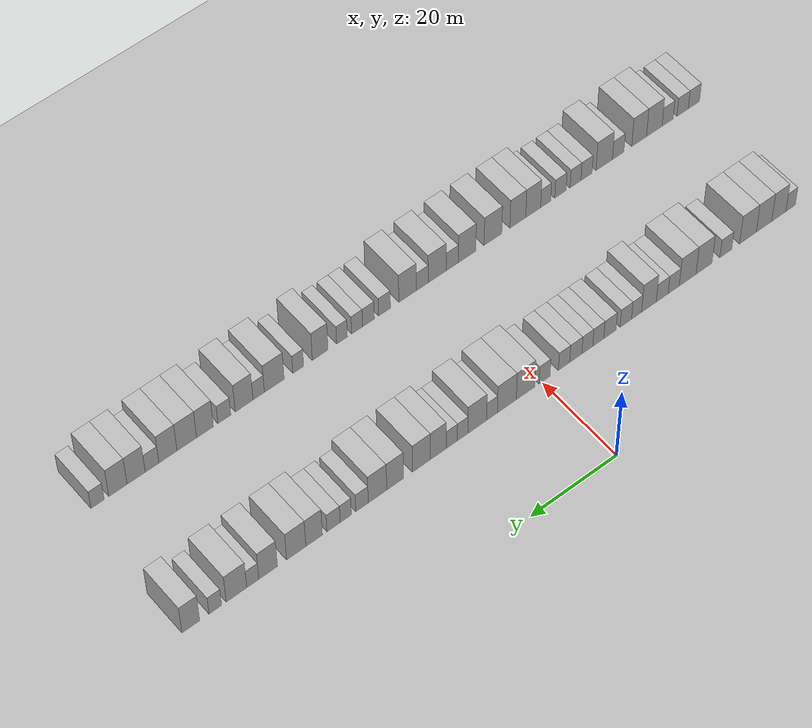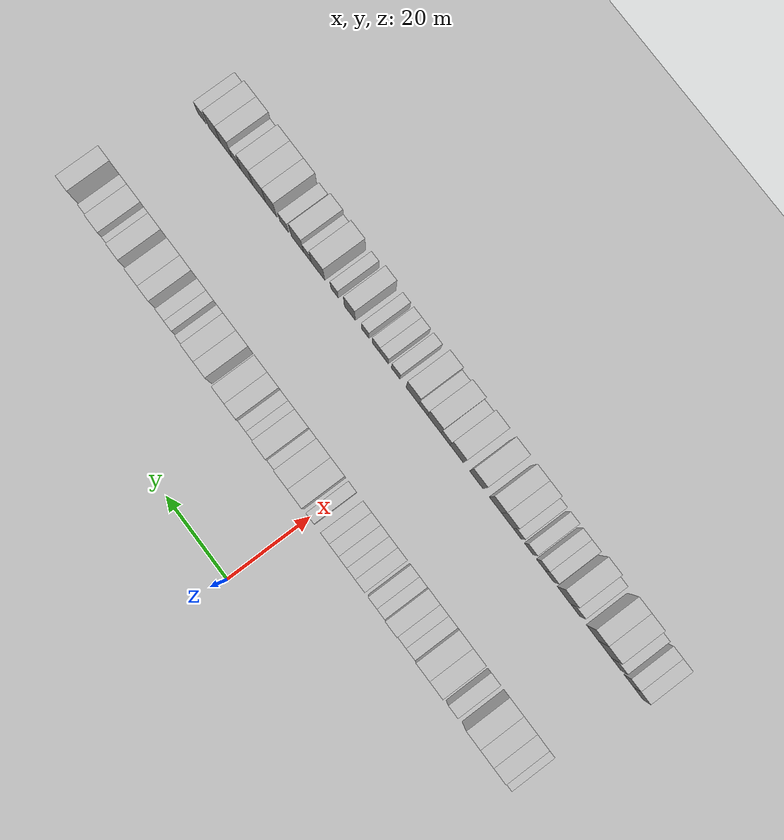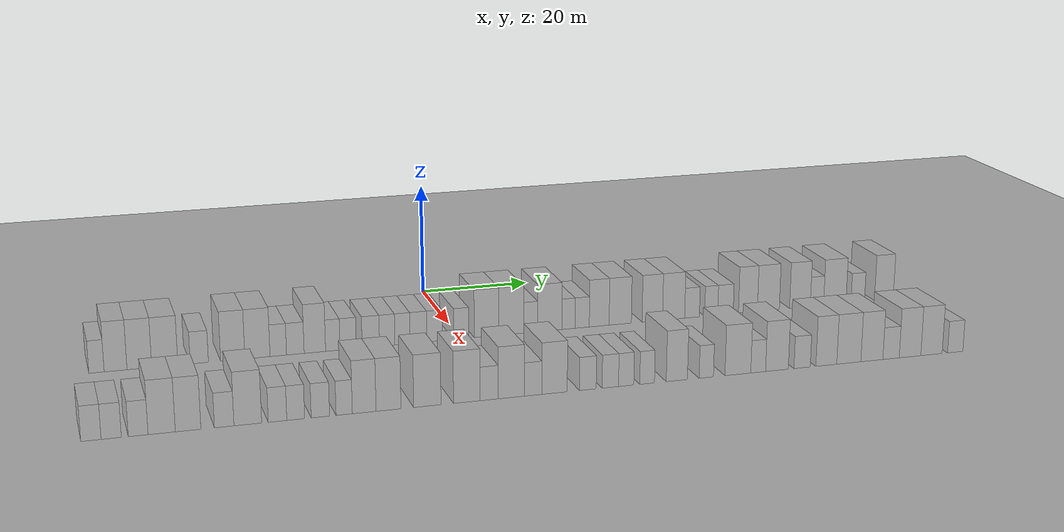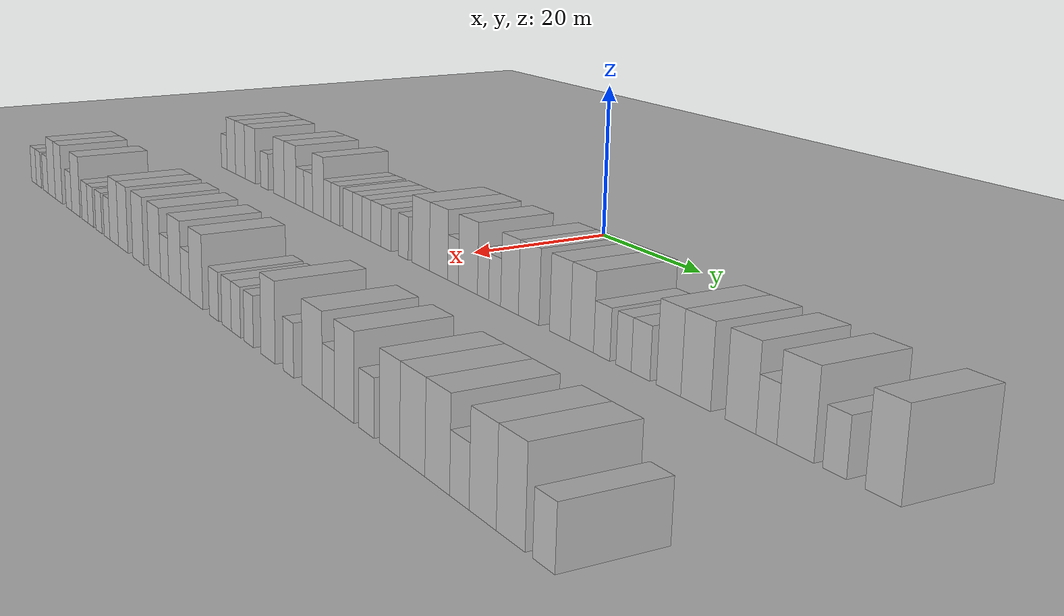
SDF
<sdf version="1.6">
 <world name="default">
  <include><name>ground_plane_1</name><uri>model://HANNAS_ground_plane</uri></include>
  <include>
   <name>ground_plane_2</name>
   <uri>model://HANNAS_ground_plane</uri>
   <pose>100 0 0  0 0 0</pose>
  </include>
  <model name="building_42">
   <static>1</static>
   <pose>25.0000 -61.3032 0 0.000000 0.000000 0.000000</pose>
   <link name="link">
    <pose>0 0 3.00 0 0 0</pose>
    <collision name="collision"><geometry><box><size>10.0000 2.4321 6.0000</size></box></geometry></collision>
    <visual name="visual">
     <cast_shadows>0</cast_shadows>
     <geometry><box><size>10.0000 2.4321 6.0000</size></box></geometry>
     <material>
      <script>
       <uri>model://HANNAS_wall/materials/scripts</uri>
       <uri>model://HANNAS_wall/materials/textures</uri>
       <name>vrc/HANNAS_wall</name>
      </script>
     </material>
    </visual>
   </link>
  </model>
  <model name="building_43">
   <static>1</static>
   <pose>25.0000 -58.2688 0 0.000000 0.000000 0.000000</pose>
   <link name="link">
    <pose>0 0 4.50 0 0 0</pose>
    <collision name="collision"><geometry><box><size>10.0000 3.6367 9.0000</size></box></geometry></collision>
    <visual name="visual">
     <cast_shadows>0</cast_shadows>
     <geometry><box><size>10.0000 3.6367 9.0000</size></box></geometry>
     <material>
      <script>
       <uri>model://HANNAS_wall/materials/scripts</uri>
       <uri>model://HANNAS_wall/materials/textures</uri>
       <name>vrc/HANNAS_wall</name>
      </script>
     </material>
    </visual>
   </link>
  </model>
  <model name="building_44">
   <static>1</static>
   <pose>25.0000 -54.4669 0 0.000000 0.000000 0.000000</pose>
   <link name="link">
    <pose>0 0 4.50 0 0 0</pose>
    <collision name="collision"><geometry><box><size>10.0000 3.9671 9.0000</size></box></geometry></collision>
    <visual name="visual">
     <cast_shadows>0</cast_shadows>
     <geometry><box><size>10.0000 3.9671 9.0000</size></box></geometry>
     <material>
      <script>
       <uri>model://HANNAS_wall/materials/scripts</uri>
       <uri>model://HANNAS_wall/materials/textures</uri>
       <name>vrc/HANNAS_wall</name>
      </script>
     </material>
    </visual>
   </link>
  </model>
  <model name="building_45">
   <static>1</static>
   <pose>25.0000 -50.3726 0 0.000000 0.000000 0.000000</pose>
   <link name="link">
    <pose>0 0 4.50 0 0 0</pose>
    <collision name="collision"><geometry><box><size>10.0000 4.2215 9.0000</size></box></geometry></collision>
    <visual name="visual">
     <cast_shadows>0</cast_shadows>
     <geometry><box><size>10.0000 4.2215 9.0000</size></box></geometry>
     <material>
      <script>
       <uri>model://HANNAS_wall/materials/scripts</uri>
       <uri>model://HANNAS_wall/materials/textures</uri>
       <name>vrc/HANNAS_wall</name>
      </script>
     </material>
    </visual>
   </link>
  </model>
  <model name="building_46">
   <static>1</static>
   <pose>25.0000 -44.7793 0 0.000000 0.000000 0.000000</pose>
   <link name="link">
    <pose>0 0 3.00 0 0 0</pose>
    <collision name="collision"><geometry><box><size>10.0000 2.9651 6.0000</size></box></geometry></collision>
    <visual name="visual">
     <cast_shadows>0</cast_shadows>
     <geometry><box><size>10.0000 2.9651 6.0000</size></box></geometry>
     <material>
      <script>
       <uri>model://HANNAS_wall/materials/scripts</uri>
       <uri>model://HANNAS_wall/materials/textures</uri>
       <name>vrc/HANNAS_wall</name>
      </script>
     </material>
    </visual>
   </link>
  </model>
  <model name="building_47">
   <static>1</static>
   <pose>25.0000 -39.2982 0 0.000000 0.000000 0.000000</pose>
   <link name="link">
    <pose>0 0 4.50 0 0 0</pose>
    <collision name="collision"><geometry><box><size>10.0000 3.9969 9.0000</size></box></geometry></collision>
    <visual name="visual">
     <cast_shadows>0</cast_shadows>
     <geometry><box><size>10.0000 3.9969 9.0000</size></box></geometry>
     <material>
      <script>
       <uri>model://HANNAS_wall/materials/scripts</uri>
       <uri>model://HANNAS_wall/materials/textures</uri>
       <name>vrc/HANNAS_wall</name>
      </script>
     </material>
    </visual>
   </link>
  </model>
  <model name="building_48">
   <static>1</static>
   <pose>25.0000 -35.2171 0 0.000000 0.000000 0.000000</pose>
   <link name="link">
    <pose>0 0 4.50 0 0 0</pose>
    <collision name="collision"><geometry><box><size>10.0000 4.1654 9.0000</size></box></geometry></collision>
    <visual name="visual">
     <cast_shadows>0</cast_shadows>
     <geometry><box><size>10.0000 4.1654 9.0000</size></box></geometry>
     <material>
      <script>
       <uri>model://HANNAS_wall/materials/scripts</uri>
       <uri>model://HANNAS_wall/materials/textures</uri>
       <name>vrc/HANNAS_wall</name>
      </script>
     </material>
    </visual>
   </link>
  </model>
  <model name="building_49">
   <static>1</static>
   <pose>25.0000 -31.7569 0 0.000000 0.000000 0.000000</pose>
   <link name="link">
    <pose>0 0 3.00 0 0 0</pose>
    <collision name="collision"><geometry><box><size>10.0000 2.7550 6.0000</size></box></geometry></collision>
    <visual name="visual">
     <cast_shadows>0</cast_shadows>
     <geometry><box><size>10.0000 2.7550 6.0000</size></box></geometry>
     <material>
      <script>
       <uri>model://HANNAS_wall/materials/scripts</uri>
       <uri>model://HANNAS_wall/materials/textures</uri>
       <name>vrc/HANNAS_wall</name>
      </script>
     </material>
    </visual>
   </link>
  </model>
  <model name="building_50">
   <static>1</static>
   <pose>25.0000 -28.9018 0 0.000000 0.000000 0.000000</pose>
   <link name="link">
    <pose>0 0 3.00 0 0 0</pose>
    <collision name="collision"><geometry><box><size>10.0000 2.9551 6.0000</size></box></geometry></collision>
    <visual name="visual">
     <cast_shadows>0</cast_shadows>
     <geometry><box><size>10.0000 2.9551 6.0000</size></box></geometry>
     <material>
      <script>
       <uri>model://HANNAS_wall/materials/scripts</uri>
       <uri>model://HANNAS_wall/materials/textures</uri>
       <name>vrc/HANNAS_wall</name>
      </script>
     </material>
    </visual>
   </link>
  </model>
  <model name="building_51">
   <static>1</static>
   <pose>25.0000 -25.6141 0 0.000000 0.000000 0.000000</pose>
   <link name="link">
    <pose>0 0 4.50 0 0 0</pose>
    <collision name="collision"><geometry><box><size>10.0000 3.6203 9.0000</size></box></geometry></collision>
    <visual name="visual">
     <cast_shadows>0</cast_shadows>
     <geometry><box><size>10.0000 3.6203 9.0000</size></box></geometry>
     <material>
      <script>
       <uri>model://HANNAS_wall/materials/scripts</uri>
       <uri>model://HANNAS_wall/materials/textures</uri>
       <name>vrc/HANNAS_wall</name>
      </script>
     </material>
    </visual>
   </link>
  </model>
  <model name="building_52">
   <static>1</static>
   <pose>25.0000 -22.5794 0 0.000000 0.000000 0.000000</pose>
   <link name="link">
    <pose>0 0 3.00 0 0 0</pose>
    <collision name="collision"><geometry><box><size>10.0000 2.4492 6.0000</size></box></geometry></collision>
    <visual name="visual">
     <cast_shadows>0</cast_shadows>
     <geometry><box><size>10.0000 2.4492 6.0000</size></box></geometry>
     <material>
      <script>
       <uri>model://HANNAS_wall/materials/scripts</uri>
       <uri>model://HANNAS_wall/materials/textures</uri>
       <name>vrc/HANNAS_wall</name>
      </script>
     </material>
    </visual>
   </link>
  </model>
  <model name="building_53">
   <static>1</static>
   <pose>25.0000 -19.9680 0 0.000000 0.000000 0.000000</pose>
   <link name="link">
    <pose>0 0 3.00 0 0 0</pose>
    <collision name="collision"><geometry><box><size>10.0000 2.7736 6.0000</size></box></geometry></collision>
    <visual name="visual">
     <cast_shadows>0</cast_shadows>
     <geometry><box><size>10.0000 2.7736 6.0000</size></box></geometry>
     <material>
      <script>
       <uri>model://HANNAS_wall/materials/scripts</uri>
       <uri>model://HANNAS_wall/materials/textures</uri>
       <name>vrc/HANNAS_wall</name>
      </script>
     </material>
    </visual>
   </link>
  </model>
  <model name="building_54">
   <static>1</static>
   <pose>25.0000 -16.0927 0 0.000000 0.000000 0.000000</pose>
   <link name="link">
    <pose>0 0 3.00 0 0 0</pose>
    <collision name="collision"><geometry><box><size>10.0000 2.9770 6.0000</size></box></geometry></collision>
    <visual name="visual">
     <cast_shadows>0</cast_shadows>
     <geometry><box><size>10.0000 2.9770 6.0000</size></box></geometry>
     <material>
      <script>
       <uri>model://HANNAS_wall/materials/scripts</uri>
       <uri>model://HANNAS_wall/materials/textures</uri>
       <name>vrc/HANNAS_wall</name>
      </script>
     </material>
    </visual>
   </link>
  </model>
  <model name="building_55">
   <static>1</static>
   <pose>25.0000 -13.2779 0 0.000000 0.000000 0.000000</pose>
   <link name="link">
    <pose>0 0 3.00 0 0 0</pose>
    <collision name="collision"><geometry><box><size>10.0000 2.6525 6.0000</size></box></geometry></collision>
    <visual name="visual">
     <cast_shadows>0</cast_shadows>
     <geometry><box><size>10.0000 2.6525 6.0000</size></box></geometry>
     <material>
      <script>
       <uri>model://HANNAS_wall/materials/scripts</uri>
       <uri>model://HANNAS_wall/materials/textures</uri>
       <name>vrc/HANNAS_wall</name>
      </script>
     </material>
    </visual>
   </link>
  </model>
  <model name="building_56">
   <static>1</static>
   <pose>25.0000 -10.6362 0 0.000000 0.000000 0.000000</pose>
   <link name="link">
    <pose>0 0 3.00 0 0 0</pose>
    <collision name="collision"><geometry><box><size>10.0000 2.6308 6.0000</size></box></geometry></collision>
    <visual name="visual">
     <cast_shadows>0</cast_shadows>
     <geometry><box><size>10.0000 2.6308 6.0000</size></box></geometry>
     <material>
      <script>
       <uri>model://HANNAS_wall/materials/scripts</uri>
       <uri>model://HANNAS_wall/materials/textures</uri>
       <name>vrc/HANNAS_wall</name>
      </script>
     </material>
    </visual>
   </link>
  </model>
  <model name="building_57">
   <static>1</static>
   <pose>25.0000 -7.8545 0 0.000000 0.000000 0.000000</pose>
   <link name="link">
    <pose>0 0 3.00 0 0 0</pose>
    <collision name="collision"><geometry><box><size>10.0000 2.9326 6.0000</size></box></geometry></collision>
    <visual name="visual">
     <cast_shadows>0</cast_shadows>
     <geometry><box><size>10.0000 2.9326 6.0000</size></box></geometry>
     <material>
      <script>
       <uri>model://HANNAS_wall/materials/scripts</uri>
       <uri>model://HANNAS_wall/materials/textures</uri>
       <name>vrc/HANNAS_wall</name>
      </script>
     </material>
    </visual>
   </link>
  </model>
  <model name="building_58">
   <static>1</static>
   <pose>25.0000 -5.0424 0 0.000000 0.000000 0.000000</pose>
   <link name="link">
    <pose>0 0 3.00 0 0 0</pose>
    <collision name="collision"><geometry><box><size>10.0000 2.6916 6.0000</size></box></geometry></collision>
    <visual name="visual">
     <cast_shadows>0</cast_shadows>
     <geometry><box><size>10.0000 2.6916 6.0000</size></box></geometry>
     <material>
      <script>
       <uri>model://HANNAS_wall/materials/scripts</uri>
       <uri>model://HANNAS_wall/materials/textures</uri>
       <name>vrc/HANNAS_wall</name>
      </script>
     </material>
    </visual>
   </link>
  </model>
  <model name="building_59">
   <static>1</static>
   <pose>25.0000 -0.3931 0 0.000000 0.000000 0.000000</pose>
   <link name="link">
    <pose>0 0 3.00 0 0 0</pose>
    <collision name="collision"><geometry><box><size>10.0000 2.6072 6.0000</size></box></geometry></collision>
    <visual name="visual">
     <cast_shadows>0</cast_shadows>
     <geometry><box><size>10.0000 2.6072 6.0000</size></box></geometry>
     <material>
      <script>
       <uri>model://HANNAS_wall/materials/scripts</uri>
       <uri>model://HANNAS_wall/materials/textures</uri>
       <name>vrc/HANNAS_wall</name>
      </script>
     </material>
    </visual>
   </link>
  </model>
  <model name="building_60">
   <static>1</static>
   <pose>25.0000 4.1057 0 0.000000 0.000000 0.000000</pose>
   <link name="link">
    <pose>0 0 4.50 0 0 0</pose>
    <collision name="collision"><geometry><box><size>10.0000 4.3903 9.0000</size></box></geometry></collision>
    <visual name="visual">
     <cast_shadows>0</cast_shadows>
     <geometry><box><size>10.0000 4.3903 9.0000</size></box></geometry>
     <material>
      <script>
       <uri>model://HANNAS_wall/materials/scripts</uri>
       <uri>model://HANNAS_wall/materials/textures</uri>
       <name>vrc/HANNAS_wall</name>
      </script>
     </material>
    </visual>
   </link>
  </model>
  <model name="building_61">
   <static>1</static>
   <pose>25.0000 8.5219 0 0.000000 0.000000 0.000000</pose>
   <link name="link">
    <pose>0 0 4.50 0 0 0</pose>
    <collision name="collision"><geometry><box><size>10.0000 4.4422 9.0000</size></box></geometry></collision>
    <visual name="visual">
     <cast_shadows>0</cast_shadows>
     <geometry><box><size>10.0000 4.4422 9.0000</size></box></geometry>
     <material>
      <script>
       <uri>model://HANNAS_wall/materials/scripts</uri>
       <uri>model://HANNAS_wall/materials/textures</uri>
       <name>vrc/HANNAS_wall</name>
      </script>
     </material>
    </visual>
   </link>
  </model>
  <model name="building_62">
   <static>1</static>
   <pose>25.0000 11.9915 0 0.000000 0.000000 0.000000</pose>
   <link name="link">
    <pose>0 0 3.00 0 0 0</pose>
    <collision name="collision"><geometry><box><size>10.0000 2.4968 6.0000</size></box></geometry></collision>
    <visual name="visual">
     <cast_shadows>0</cast_shadows>
     <geometry><box><size>10.0000 2.4968 6.0000</size></box></geometry>
     <material>
      <script>
       <uri>model://HANNAS_wall/materials/scripts</uri>
       <uri>model://HANNAS_wall/materials/textures</uri>
       <name>vrc/HANNAS_wall</name>
      </script>
     </material>
    </visual>
   </link>
  </model>
  <model name="building_63">
   <static>1</static>
   <pose>25.0000 15.4140 0 0.000000 0.000000 0.000000</pose>
   <link name="link">
    <pose>0 0 4.50 0 0 0</pose>
    <collision name="collision"><geometry><box><size>10.0000 4.3483 9.0000</size></box></geometry></collision>
    <visual name="visual">
     <cast_shadows>0</cast_shadows>
     <geometry><box><size>10.0000 4.3483 9.0000</size></box></geometry>
     <material>
      <script>
       <uri>model://HANNAS_wall/materials/scripts</uri>
       <uri>model://HANNAS_wall/materials/textures</uri>
       <name>vrc/HANNAS_wall</name>
      </script>
     </material>
    </visual>
   </link>
  </model>
  <model name="building_64">
   <static>1</static>
   <pose>25.0000 18.8044 0 0.000000 0.000000 0.000000</pose>
   <link name="link">
    <pose>0 0 3.00 0 0 0</pose>
    <collision name="collision"><geometry><box><size>10.0000 2.4324 6.0000</size></box></geometry></collision>
    <visual name="visual">
     <cast_shadows>0</cast_shadows>
     <geometry><box><size>10.0000 2.4324 6.0000</size></box></geometry>
     <material>
      <script>
       <uri>model://HANNAS_wall/materials/scripts</uri>
       <uri>model://HANNAS_wall/materials/textures</uri>
       <name>vrc/HANNAS_wall</name>
      </script>
     </material>
    </visual>
   </link>
  </model>
  <model name="building_65">
   <static>1</static>
   <pose>25.0000 21.3094 0 0.000000 0.000000 0.000000</pose>
   <link name="link">
    <pose>0 0 3.00 0 0 0</pose>
    <collision name="collision"><geometry><box><size>10.0000 2.5777 6.0000</size></box></geometry></collision>
    <visual name="visual">
     <cast_shadows>0</cast_shadows>
     <geometry><box><size>10.0000 2.5777 6.0000</size></box></geometry>
     <material>
      <script>
       <uri>model://HANNAS_wall/materials/scripts</uri>
       <uri>model://HANNAS_wall/materials/textures</uri>
       <name>vrc/HANNAS_wall</name>
      </script>
     </material>
    </visual>
   </link>
  </model>
  <model name="building_66">
   <static>1</static>
   <pose>25.0000 24.4239 0 0.000000 0.000000 0.000000</pose>
   <link name="link">
    <pose>0 0 4.50 0 0 0</pose>
    <collision name="collision"><geometry><box><size>10.0000 3.6513 9.0000</size></box></geometry></collision>
    <visual name="visual">
     <cast_shadows>0</cast_shadows>
     <geometry><box><size>10.0000 3.6513 9.0000</size></box></geometry>
     <material>
      <script>
       <uri>model://HANNAS_wall/materials/scripts</uri>
       <uri>model://HANNAS_wall/materials/textures</uri>
       <name>vrc/HANNAS_wall</name>
      </script>
     </material>
    </visual>
   </link>
  </model>
  <model name="building_67">
   <static>1</static>
   <pose>25.0000 28.3000 0 0.000000 0.000000 0.000000</pose>
   <link name="link">
    <pose>0 0 4.50 0 0 0</pose>
    <collision name="collision"><geometry><box><size>10.0000 4.1008 9.0000</size></box></geometry></collision>
    <visual name="visual">
     <cast_shadows>0</cast_shadows>
     <geometry><box><size>10.0000 4.1008 9.0000</size></box></geometry>
     <material>
      <script>
       <uri>model://HANNAS_wall/materials/scripts</uri>
       <uri>model://HANNAS_wall/materials/textures</uri>
       <name>vrc/HANNAS_wall</name>
      </script>
     </material>
    </visual>
   </link>
  </model>
  <model name="building_68">
   <static>1</static>
   <pose>25.0000 34.2582 0 0.000000 0.000000 0.000000</pose>
   <link name="link">
    <pose>0 0 4.50 0 0 0</pose>
    <collision name="collision"><geometry><box><size>10.0000 3.8156 9.0000</size></box></geometry></collision>
    <visual name="visual">
     <cast_shadows>0</cast_shadows>
     <geometry><box><size>10.0000 3.8156 9.0000</size></box></geometry>
     <material>
      <script>
       <uri>model://HANNAS_wall/materials/scripts</uri>
       <uri>model://HANNAS_wall/materials/textures</uri>
       <name>vrc/HANNAS_wall</name>
      </script>
     </material>
    </visual>
   </link>
  </model>
  <model name="building_69">
   <static>1</static>
   <pose>25.0000 38.2480 0 0.000000 0.000000 0.000000</pose>
   <link name="link">
    <pose>0 0 4.50 0 0 0</pose>
    <collision name="collision"><geometry><box><size>10.0000 4.1641 9.0000</size></box></geometry></collision>
    <visual name="visual">
     <cast_shadows>0</cast_shadows>
     <geometry><box><size>10.0000 4.1641 9.0000</size></box></geometry>
     <material>
      <script>
       <uri>model://HANNAS_wall/materials/scripts</uri>
       <uri>model://HANNAS_wall/materials/textures</uri>
       <name>vrc/HANNAS_wall</name>
      </script>
     </material>
    </visual>
   </link>
  </model>
  <model name="building_70">
   <static>1</static>
   <pose>25.0000 41.7224 0 0.000000 0.000000 0.000000</pose>
   <link name="link">
    <pose>0 0 3.00 0 0 0</pose>
    <collision name="collision"><geometry><box><size>10.0000 2.7847 6.0000</size></box></geometry></collision>
    <visual name="visual">
     <cast_shadows>0</cast_shadows>
     <geometry><box><size>10.0000 2.7847 6.0000</size></box></geometry>
     <material>
      <script>
       <uri>model://HANNAS_wall/materials/scripts</uri>
       <uri>model://HANNAS_wall/materials/textures</uri>
       <name>vrc/HANNAS_wall</name>
      </script>
     </material>
    </visual>
   </link>
  </model>
  <model name="building_71">
   <static>1</static>
   <pose>25.0000 45.3546 0 0.000000 0.000000 0.000000</pose>
   <link name="link">
    <pose>0 0 3.00 0 0 0</pose>
    <collision name="collision"><geometry><box><size>10.0000 2.4796 6.0000</size></box></geometry></collision>
    <visual name="visual">
     <cast_shadows>0</cast_shadows>
     <geometry><box><size>10.0000 2.4796 6.0000</size></box></geometry>
     <material>
      <script>
       <uri>model://HANNAS_wall/materials/scripts</uri>
       <uri>model://HANNAS_wall/materials/textures</uri>
       <name>vrc/HANNAS_wall</name>
      </script>
     </material>
    </visual>
   </link>
  </model>
  <model name="building_72">
   <static>1</static>
   <pose>25.0000 48.0746 0 0.000000 0.000000 0.000000</pose>
   <link name="link">
    <pose>0 0 3.00 0 0 0</pose>
    <collision name="collision"><geometry><box><size>10.0000 2.9604 6.0000</size></box></geometry></collision>
    <visual name="visual">
     <cast_shadows>0</cast_shadows>
     <geometry><box><size>10.0000 2.9604 6.0000</size></box></geometry>
     <material>
      <script>
       <uri>model://HANNAS_wall/materials/scripts</uri>
       <uri>model://HANNAS_wall/materials/textures</uri>
       <name>vrc/HANNAS_wall</name>
      </script>
     </material>
    </visual>
   </link>
  </model>
  <model name="building_73">
   <static>1</static>
   <pose>25.0000 52.3773 0 0.000000 0.000000 0.000000</pose>
   <link name="link">
    <pose>0 0 4.50 0 0 0</pose>
    <collision name="collision"><geometry><box><size>10.0000 3.6450 9.0000</size></box></geometry></collision>
    <visual name="visual">
     <cast_shadows>0</cast_shadows>
     <geometry><box><size>10.0000 3.6450 9.0000</size></box></geometry>
     <material>
      <script>
       <uri>model://HANNAS_wall/materials/scripts</uri>
       <uri>model://HANNAS_wall/materials/textures</uri>
       <name>vrc/HANNAS_wall</name>
      </script>
     </material>
    </visual>
   </link>
  </model>
  <model name="building_74">
   <static>1</static>
   <pose>25.0000 56.3218 0 0.000000 0.000000 0.000000</pose>
   <link name="link">
    <pose>0 0 4.50 0 0 0</pose>
    <collision name="collision"><geometry><box><size>10.0000 4.2439 9.0000</size></box></geometry></collision>
    <visual name="visual">
     <cast_shadows>0</cast_shadows>
     <geometry><box><size>10.0000 4.2439 9.0000</size></box></geometry>
     <material>
      <script>
       <uri>model://HANNAS_wall/materials/scripts</uri>
       <uri>model://HANNAS_wall/materials/textures</uri>
       <name>vrc/HANNAS_wall</name>
      </script>
     </material>
    </visual>
   </link>
  </model>
  <model name="building_75">
   <static>1</static>
   <pose>25.0000 62.4645 0 0.000000 0.000000 0.000000</pose>
   <link name="link">
    <pose>0 0 4.50 0 0 0</pose>
    <collision name="collision"><geometry><box><size>10.0000 4.0416 9.0000</size></box></geometry></collision>
    <visual name="visual">
     <cast_shadows>0</cast_shadows>
     <geometry><box><size>10.0000 4.0416 9.0000</size></box></geometry>
     <material>
      <script>
       <uri>model://HANNAS_wall/materials/scripts</uri>
       <uri>model://HANNAS_wall/materials/textures</uri>
       <name>vrc/HANNAS_wall</name>
      </script>
     </material>
    </visual>
   </link>
  </model>
  <model name="building_76">
   <static>1</static>
   <pose>25.0000 65.7920 0 0.000000 0.000000 0.000000</pose>
   <link name="link">
    <pose>0 0 3.00 0 0 0</pose>
    <collision name="collision"><geometry><box><size>10.0000 2.6134 6.0000</size></box></geometry></collision>
    <visual name="visual">
     <cast_shadows>0</cast_shadows>
     <geometry><box><size>10.0000 2.6134 6.0000</size></box></geometry>
     <material>
      <script>
       <uri>model://HANNAS_wall/materials/scripts</uri>
       <uri>model://HANNAS_wall/materials/textures</uri>
       <name>vrc/HANNAS_wall</name>
      </script>
     </material>
    </visual>
   </link>
  </model>
  <model name="building_77">
   <static>1</static>
   <pose>25.0000 69.3155 0 0.000000 0.000000 0.000000</pose>
   <link name="link">
    <pose>0 0 4.50 0 0 0</pose>
    <collision name="collision"><geometry><box><size>10.0000 4.4335 9.0000</size></box></geometry></collision>
    <visual name="visual">
     <cast_shadows>0</cast_shadows>
     <geometry><box><size>10.0000 4.4335 9.0000</size></box></geometry>
     <material>
      <script>
       <uri>model://HANNAS_wall/materials/scripts</uri>
       <uri>model://HANNAS_wall/materials/textures</uri>
       <name>vrc/HANNAS_wall</name>
      </script>
     </material>
    </visual>
   </link>
  </model>
  <model name="building_78">
   <static>1</static>
   <pose>25.0000 73.8752 0 0.000000 0.000000 0.000000</pose>
   <link name="link">
    <pose>0 0 3.00 0 0 0</pose>
    <collision name="collision"><geometry><box><size>10.0000 2.6859 6.0000</size></box></geometry></collision>
    <visual name="visual">
     <cast_shadows>0</cast_shadows>
     <geometry><box><size>10.0000 2.6859 6.0000</size></box></geometry>
     <material>
      <script>
       <uri>model://HANNAS_wall/materials/scripts</uri>
       <uri>model://HANNAS_wall/materials/textures</uri>
       <name>vrc/HANNAS_wall</name>
      </script>
     </material>
    </visual>
   </link>
  </model>
  <model name="building_79">
   <static>1</static>
   <pose>25.0000 79.0984 0 0.000000 0.000000 0.000000</pose>
   <link name="link">
    <pose>0 0 4.50 0 0 0</pose>
    <collision name="collision"><geometry><box><size>10.0000 3.7604 9.0000</size></box></geometry></collision>
    <visual name="visual">
     <cast_shadows>0</cast_shadows>
     <geometry><box><size>10.0000 3.7604 9.0000</size></box></geometry>
     <material>
      <script>
       <uri>model://HANNAS_wall/materials/scripts</uri>
       <uri>model://HANNAS_wall/materials/textures</uri>
       <name>vrc/HANNAS_wall</name>
      </script>
     </material>
    </visual>
   </link>
  </model>
  <model name="building_151">
   <static>1</static>
   <pose>55.0000 -64.1379 0 0.000000 0.000000 0.000000</pose>
   <link name="link">
    <pose>0 0 3.00 0 0 0</pose>
    <collision name="collision"><geometry><box><size>10.0000 2.9160 6.0000</size></box></geometry></collision>
    <visual name="visual">
     <cast_shadows>0</cast_shadows>
     <geometry><box><size>10.0000 2.9160 6.0000</size></box></geometry>
     <material>
      <script>
       <uri>model://HANNAS_wall/materials/scripts</uri>
       <uri>model://HANNAS_wall/materials/textures</uri>
       <name>vrc/HANNAS_wall</name>
      </script>
     </material>
    </visual>
   </link>
  </model>
  <model name="building_152">
   <static>1</static>
   <pose>55.0000 -61.2200 0 0.000000 0.000000 0.000000</pose>
   <link name="link">
    <pose>0 0 3.00 0 0 0</pose>
    <collision name="collision"><geometry><box><size>10.0000 2.9199 6.0000</size></box></geometry></collision>
    <visual name="visual">
     <cast_shadows>0</cast_shadows>
     <geometry><box><size>10.0000 2.9199 6.0000</size></box></geometry>
     <material>
      <script>
       <uri>model://HANNAS_wall/materials/scripts</uri>
       <uri>model://HANNAS_wall/materials/textures</uri>
       <name>vrc/HANNAS_wall</name>
      </script>
     </material>
    </visual>
   </link>
  </model>
  <model name="building_153">
   <static>1</static>
   <pose>55.0000 -57.3246 0 0.000000 0.000000 0.000000</pose>
   <link name="link">
    <pose>0 0 3.00 0 0 0</pose>
    <collision name="collision"><geometry><box><size>10.0000 2.8708 6.0000</size></box></geometry></collision>
    <visual name="visual">
     <cast_shadows>0</cast_shadows>
     <geometry><box><size>10.0000 2.8708 6.0000</size></box></geometry>
     <material>
      <script>
       <uri>model://HANNAS_wall/materials/scripts</uri>
       <uri>model://HANNAS_wall/materials/textures</uri>
       <name>vrc/HANNAS_wall</name>
      </script>
     </material>
    </visual>
   </link>
  </model>
  <model name="building_154">
   <static>1</static>
   <pose>55.0000 -53.8946 0 0.000000 0.000000 0.000000</pose>
   <link name="link">
    <pose>0 0 4.50 0 0 0</pose>
    <collision name="collision"><geometry><box><size>10.0000 3.9892 9.0000</size></box></geometry></collision>
    <visual name="visual">
     <cast_shadows>0</cast_shadows>
     <geometry><box><size>10.0000 3.9892 9.0000</size></box></geometry>
     <material>
      <script>
       <uri>model://HANNAS_wall/materials/scripts</uri>
       <uri>model://HANNAS_wall/materials/textures</uri>
       <name>vrc/HANNAS_wall</name>
      </script>
     </material>
    </visual>
   </link>
  </model>
  <model name="building_155">
   <static>1</static>
   <pose>55.0000 -50.0139 0 0.000000 0.000000 0.000000</pose>
   <link name="link">
    <pose>0 0 4.50 0 0 0</pose>
    <collision name="collision"><geometry><box><size>10.0000 3.7723 9.0000</size></box></geometry></collision>
    <visual name="visual">
     <cast_shadows>0</cast_shadows>
     <geometry><box><size>10.0000 3.7723 9.0000</size></box></geometry>
     <material>
      <script>
       <uri>model://HANNAS_wall/materials/scripts</uri>
       <uri>model://HANNAS_wall/materials/textures</uri>
       <name>vrc/HANNAS_wall</name>
      </script>
     </material>
    </visual>
   </link>
  </model>
  <model name="building_156">
   <static>1</static>
   <pose>55.0000 -44.6736 0 0.000000 0.000000 0.000000</pose>
   <link name="link">
    <pose>0 0 3.00 0 0 0</pose>
    <collision name="collision"><geometry><box><size>10.0000 2.9083 6.0000</size></box></geometry></collision>
    <visual name="visual">
     <cast_shadows>0</cast_shadows>
     <geometry><box><size>10.0000 2.9083 6.0000</size></box></geometry>
     <material>
      <script>
       <uri>model://HANNAS_wall/materials/scripts</uri>
       <uri>model://HANNAS_wall/materials/textures</uri>
       <name>vrc/HANNAS_wall</name>
      </script>
     </material>
    </visual>
   </link>
  </model>
  <model name="building_157">
   <static>1</static>
   <pose>55.0000 -41.1451 0 0.000000 0.000000 0.000000</pose>
   <link name="link">
    <pose>0 0 4.50 0 0 0</pose>
    <collision name="collision"><geometry><box><size>10.0000 4.1486 9.0000</size></box></geometry></collision>
    <visual name="visual">
     <cast_shadows>0</cast_shadows>
     <geometry><box><size>10.0000 4.1486 9.0000</size></box></geometry>
     <material>
      <script>
       <uri>model://HANNAS_wall/materials/scripts</uri>
       <uri>model://HANNAS_wall/materials/textures</uri>
       <name>vrc/HANNAS_wall</name>
      </script>
     </material>
    </visual>
   </link>
  </model>
  <model name="building_158">
   <static>1</static>
   <pose>55.0000 -36.6709 0 0.000000 0.000000 0.000000</pose>
   <link name="link">
    <pose>0 0 3.00 0 0 0</pose>
    <collision name="collision"><geometry><box><size>10.0000 2.7996 6.0000</size></box></geometry></collision>
    <visual name="visual">
     <cast_shadows>0</cast_shadows>
     <geometry><box><size>10.0000 2.7996 6.0000</size></box></geometry>
     <material>
      <script>
       <uri>model://HANNAS_wall/materials/scripts</uri>
       <uri>model://HANNAS_wall/materials/textures</uri>
       <name>vrc/HANNAS_wall</name>
      </script>
     </material>
    </visual>
   </link>
  </model>
  <model name="building_159">
   <static>1</static>
   <pose>55.0000 -33.9151 0 0.000000 0.000000 0.000000</pose>
   <link name="link">
    <pose>0 0 3.00 0 0 0</pose>
    <collision name="collision"><geometry><box><size>10.0000 2.7120 6.0000</size></box></geometry></collision>
    <visual name="visual">
     <cast_shadows>0</cast_shadows>
     <geometry><box><size>10.0000 2.7120 6.0000</size></box></geometry>
     <material>
      <script>
       <uri>model://HANNAS_wall/materials/scripts</uri>
       <uri>model://HANNAS_wall/materials/textures</uri>
       <name>vrc/HANNAS_wall</name>
      </script>
     </material>
    </visual>
   </link>
  </model>
  <model name="building_160">
   <static>1</static>
   <pose>55.0000 -30.1542 0 0.000000 0.000000 0.000000</pose>
   <link name="link">
    <pose>0 0 3.00 0 0 0</pose>
    <collision name="collision"><geometry><box><size>10.0000 2.8099 6.0000</size></box></geometry></collision>
    <visual name="visual">
     <cast_shadows>0</cast_shadows>
     <geometry><box><size>10.0000 2.8099 6.0000</size></box></geometry>
     <material>
      <script>
       <uri>model://HANNAS_wall/materials/scripts</uri>
       <uri>model://HANNAS_wall/materials/textures</uri>
       <name>vrc/HANNAS_wall</name>
      </script>
     </material>
    </visual>
   </link>
  </model>
  <model name="building_161">
   <static>1</static>
   <pose>55.0000 -26.4945 0 0.000000 0.000000 0.000000</pose>
   <link name="link">
    <pose>0 0 3.00 0 0 0</pose>
    <collision name="collision"><geometry><box><size>10.0000 2.5094 6.0000</size></box></geometry></collision>
    <visual name="visual">
     <cast_shadows>0</cast_shadows>
     <geometry><box><size>10.0000 2.5094 6.0000</size></box></geometry>
     <material>
      <script>
       <uri>model://HANNAS_wall/materials/scripts</uri>
       <uri>model://HANNAS_wall/materials/textures</uri>
       <name>vrc/HANNAS_wall</name>
      </script>
     </material>
    </visual>
   </link>
  </model>
  <model name="building_162">
   <static>1</static>
   <pose>55.0000 -23.4005 0 0.000000 0.000000 0.000000</pose>
   <link name="link">
    <pose>0 0 4.50 0 0 0</pose>
    <collision name="collision"><geometry><box><size>10.0000 3.6787 9.0000</size></box></geometry></collision>
    <visual name="visual">
     <cast_shadows>0</cast_shadows>
     <geometry><box><size>10.0000 3.6787 9.0000</size></box></geometry>
     <material>
      <script>
       <uri>model://HANNAS_wall/materials/scripts</uri>
       <uri>model://HANNAS_wall/materials/textures</uri>
       <name>vrc/HANNAS_wall</name>
      </script>
     </material>
    </visual>
   </link>
  </model>
  <model name="building_163">
   <static>1</static>
   <pose>55.0000 -19.6180 0 0.000000 0.000000 0.000000</pose>
   <link name="link">
    <pose>0 0 4.50 0 0 0</pose>
    <collision name="collision"><geometry><box><size>10.0000 3.8863 9.0000</size></box></geometry></collision>
    <visual name="visual">
     <cast_shadows>0</cast_shadows>
     <geometry><box><size>10.0000 3.8863 9.0000</size></box></geometry>
     <material>
      <script>
       <uri>model://HANNAS_wall/materials/scripts</uri>
       <uri>model://HANNAS_wall/materials/textures</uri>
       <name>vrc/HANNAS_wall</name>
      </script>
     </material>
    </visual>
   </link>
  </model>
  <model name="building_164">
   <static>1</static>
   <pose>55.0000 -13.5218 0 0.000000 0.000000 0.000000</pose>
   <link name="link">
    <pose>0 0 4.50 0 0 0</pose>
    <collision name="collision"><geometry><box><size>10.0000 4.3062 9.0000</size></box></geometry></collision>
    <visual name="visual">
     <cast_shadows>0</cast_shadows>
     <geometry><box><size>10.0000 4.3062 9.0000</size></box></geometry>
     <material>
      <script>
       <uri>model://HANNAS_wall/materials/scripts</uri>
       <uri>model://HANNAS_wall/materials/textures</uri>
       <name>vrc/HANNAS_wall</name>
      </script>
     </material>
    </visual>
   </link>
  </model>
  <model name="building_165">
   <static>1</static>
   <pose>55.0000 -7.2374 0 0.000000 0.000000 0.000000</pose>
   <link name="link">
    <pose>0 0 4.50 0 0 0</pose>
    <collision name="collision"><geometry><box><size>10.0000 4.2625 9.0000</size></box></geometry></collision>
    <visual name="visual">
     <cast_shadows>0</cast_shadows>
     <geometry><box><size>10.0000 4.2625 9.0000</size></box></geometry>
     <material>
      <script>
       <uri>model://HANNAS_wall/materials/scripts</uri>
       <uri>model://HANNAS_wall/materials/textures</uri>
       <name>vrc/HANNAS_wall</name>
      </script>
     </material>
    </visual>
   </link>
  </model>
  <model name="building_166">
   <static>1</static>
   <pose>55.0000 -3.6448 0 0.000000 0.000000 0.000000</pose>
   <link name="link">
    <pose>0 0 3.00 0 0 0</pose>
    <collision name="collision"><geometry><box><size>10.0000 2.9228 6.0000</size></box></geometry></collision>
    <visual name="visual">
     <cast_shadows>0</cast_shadows>
     <geometry><box><size>10.0000 2.9228 6.0000</size></box></geometry>
     <material>
      <script>
       <uri>model://HANNAS_wall/materials/scripts</uri>
       <uri>model://HANNAS_wall/materials/textures</uri>
       <name>vrc/HANNAS_wall</name>
      </script>
     </material>
    </visual>
   </link>
  </model>
  <model name="building_167">
   <static>1</static>
   <pose>55.0000 -0.0460 0 0.000000 0.000000 0.000000</pose>
   <link name="link">
    <pose>0 0 4.50 0 0 0</pose>
    <collision name="collision"><geometry><box><size>10.0000 4.2747 9.0000</size></box></geometry></collision>
    <visual name="visual">
     <cast_shadows>0</cast_shadows>
     <geometry><box><size>10.0000 4.2747 9.0000</size></box></geometry>
     <material>
      <script>
       <uri>model://HANNAS_wall/materials/scripts</uri>
       <uri>model://HANNAS_wall/materials/textures</uri>
       <name>vrc/HANNAS_wall</name>
      </script>
     </material>
    </visual>
   </link>
  </model>
  <model name="building_168">
   <static>1</static>
   <pose>55.0000 3.4864 0 0.000000 0.000000 0.000000</pose>
   <link name="link">
    <pose>0 0 3.00 0 0 0</pose>
    <collision name="collision"><geometry><box><size>10.0000 2.7903 6.0000</size></box></geometry></collision>
    <visual name="visual">
     <cast_shadows>0</cast_shadows>
     <geometry><box><size>10.0000 2.7903 6.0000</size></box></geometry>
     <material>
      <script>
       <uri>model://HANNAS_wall/materials/scripts</uri>
       <uri>model://HANNAS_wall/materials/textures</uri>
       <name>vrc/HANNAS_wall</name>
      </script>
     </material>
    </visual>
   </link>
  </model>
  <model name="building_169">
   <static>1</static>
   <pose>55.0000 6.9680 0 0.000000 0.000000 0.000000</pose>
   <link name="link">
    <pose>0 0 4.50 0 0 0</pose>
    <collision name="collision"><geometry><box><size>10.0000 4.1728 9.0000</size></box></geometry></collision>
    <visual name="visual">
     <cast_shadows>0</cast_shadows>
     <geometry><box><size>10.0000 4.1728 9.0000</size></box></geometry>
     <material>
      <script>
       <uri>model://HANNAS_wall/materials/scripts</uri>
       <uri>model://HANNAS_wall/materials/textures</uri>
       <name>vrc/HANNAS_wall</name>
      </script>
     </material>
    </visual>
   </link>
  </model>
  <model name="building_170">
   <static>1</static>
   <pose>55.0000 12.4488 0 0.000000 0.000000 0.000000</pose>
   <link name="link">
    <pose>0 0 3.00 0 0 0</pose>
    <collision name="collision"><geometry><box><size>10.0000 2.7889 6.0000</size></box></geometry></collision>
    <visual name="visual">
     <cast_shadows>0</cast_shadows>
     <geometry><box><size>10.0000 2.7889 6.0000</size></box></geometry>
     <material>
      <script>
       <uri>model://HANNAS_wall/materials/scripts</uri>
       <uri>model://HANNAS_wall/materials/textures</uri>
       <name>vrc/HANNAS_wall</name>
      </script>
     </material>
    </visual>
   </link>
  </model>
  <model name="building_171">
   <static>1</static>
   <pose>55.0000 16.2102 0 0.000000 0.000000 0.000000</pose>
   <link name="link">
    <pose>0 0 3.00 0 0 0</pose>
    <collision name="collision"><geometry><box><size>10.0000 2.7339 6.0000</size></box></geometry></collision>
    <visual name="visual">
     <cast_shadows>0</cast_shadows>
     <geometry><box><size>10.0000 2.7339 6.0000</size></box></geometry>
     <material>
      <script>
       <uri>model://HANNAS_wall/materials/scripts</uri>
       <uri>model://HANNAS_wall/materials/textures</uri>
       <name>vrc/HANNAS_wall</name>
      </script>
     </material>
    </visual>
   </link>
  </model>
  <model name="building_172">
   <static>1</static>
   <pose>55.0000 18.8578 0 0.000000 0.000000 0.000000</pose>
   <link name="link">
    <pose>0 0 3.00 0 0 0</pose>
    <collision name="collision"><geometry><box><size>10.0000 2.5613 6.0000</size></box></geometry></collision>
    <visual name="visual">
     <cast_shadows>0</cast_shadows>
     <geometry><box><size>10.0000 2.5613 6.0000</size></box></geometry>
     <material>
      <script>
       <uri>model://HANNAS_wall/materials/scripts</uri>
       <uri>model://HANNAS_wall/materials/textures</uri>
       <name>vrc/HANNAS_wall</name>
      </script>
     </material>
    </visual>
   </link>
  </model>
  <model name="building_173">
   <static>1</static>
   <pose>55.0000 22.3815 0 0.000000 0.000000 0.000000</pose>
   <link name="link">
    <pose>0 0 3.00 0 0 0</pose>
    <collision name="collision"><geometry><box><size>10.0000 2.4861 6.0000</size></box></geometry></collision>
    <visual name="visual">
     <cast_shadows>0</cast_shadows>
     <geometry><box><size>10.0000 2.4861 6.0000</size></box></geometry>
     <material>
      <script>
       <uri>model://HANNAS_wall/materials/scripts</uri>
       <uri>model://HANNAS_wall/materials/textures</uri>
       <name>vrc/HANNAS_wall</name>
      </script>
     </material>
    </visual>
   </link>
  </model>
  <model name="building_174">
   <static>1</static>
   <pose>55.0000 27.4300 0 0.000000 0.000000 0.000000</pose>
   <link name="link">
    <pose>0 0 4.50 0 0 0</pose>
    <collision name="collision"><geometry><box><size>10.0000 3.6108 9.0000</size></box></geometry></collision>
    <visual name="visual">
     <cast_shadows>0</cast_shadows>
     <geometry><box><size>10.0000 3.6108 9.0000</size></box></geometry>
     <material>
      <script>
       <uri>model://HANNAS_wall/materials/scripts</uri>
       <uri>model://HANNAS_wall/materials/textures</uri>
       <name>vrc/HANNAS_wall</name>
      </script>
     </material>
    </visual>
   </link>
  </model>
  <model name="building_175">
   <static>1</static>
   <pose>55.0000 32.4665 0 0.000000 0.000000 0.000000</pose>
   <link name="link">
    <pose>0 0 3.00 0 0 0</pose>
    <collision name="collision"><geometry><box><size>10.0000 2.4621 6.0000</size></box></geometry></collision>
    <visual name="visual">
     <cast_shadows>0</cast_shadows>
     <geometry><box><size>10.0000 2.4621 6.0000</size></box></geometry>
     <material>
      <script>
       <uri>model://HANNAS_wall/materials/scripts</uri>
       <uri>model://HANNAS_wall/materials/textures</uri>
       <name>vrc/HANNAS_wall</name>
      </script>
     </material>
    </visual>
   </link>
  </model>
  <model name="building_176">
   <static>1</static>
   <pose>55.0000 37.9363 0 0.000000 0.000000 0.000000</pose>
   <link name="link">
    <pose>0 0 4.50 0 0 0</pose>
    <collision name="collision"><geometry><box><size>10.0000 4.4774 9.0000</size></box></geometry></collision>
    <visual name="visual">
     <cast_shadows>0</cast_shadows>
     <geometry><box><size>10.0000 4.4774 9.0000</size></box></geometry>
     <material>
      <script>
       <uri>model://HANNAS_wall/materials/scripts</uri>
       <uri>model://HANNAS_wall/materials/textures</uri>
       <name>vrc/HANNAS_wall</name>
      </script>
     </material>
    </visual>
   </link>
  </model>
  <model name="building_177">
   <static>1</static>
   <pose>55.0000 41.4684 0 0.000000 0.000000 0.000000</pose>
   <link name="link">
    <pose>0 0 3.00 0 0 0</pose>
    <collision name="collision"><geometry><box><size>10.0000 2.5869 6.0000</size></box></geometry></collision>
    <visual name="visual">
     <cast_shadows>0</cast_shadows>
     <geometry><box><size>10.0000 2.5869 6.0000</size></box></geometry>
     <material>
      <script>
       <uri>model://HANNAS_wall/materials/scripts</uri>
       <uri>model://HANNAS_wall/materials/textures</uri>
       <name>vrc/HANNAS_wall</name>
      </script>
     </material>
    </visual>
   </link>
  </model>
  <model name="building_178">
   <static>1</static>
   <pose>55.0000 44.7618 0 0.000000 0.000000 0.000000</pose>
   <link name="link">
    <pose>0 0 4.50 0 0 0</pose>
    <collision name="collision"><geometry><box><size>10.0000 3.9998 9.0000</size></box></geometry></collision>
    <visual name="visual">
     <cast_shadows>0</cast_shadows>
     <geometry><box><size>10.0000 3.9998 9.0000</size></box></geometry>
     <material>
      <script>
       <uri>model://HANNAS_wall/materials/scripts</uri>
       <uri>model://HANNAS_wall/materials/textures</uri>
       <name>vrc/HANNAS_wall</name>
      </script>
     </material>
    </visual>
   </link>
  </model>
  <model name="building_179">
   <static>1</static>
   <pose>55.0000 49.2086 0 0.000000 0.000000 0.000000</pose>
   <link name="link">
    <pose>0 0 3.00 0 0 0</pose>
    <collision name="collision"><geometry><box><size>10.0000 2.8938 6.0000</size></box></geometry></collision>
    <visual name="visual">
     <cast_shadows>0</cast_shadows>
     <geometry><box><size>10.0000 2.8938 6.0000</size></box></geometry>
     <material>
      <script>
       <uri>model://HANNAS_wall/materials/scripts</uri>
       <uri>model://HANNAS_wall/materials/textures</uri>
       <name>vrc/HANNAS_wall</name>
      </script>
     </material>
    </visual>
   </link>
  </model>
  <model name="building_180">
   <static>1</static>
   <pose>55.0000 53.5229 0 0.000000 0.000000 0.000000</pose>
   <link name="link">
    <pose>0 0 4.50 0 0 0</pose>
    <collision name="collision"><geometry><box><size>10.0000 3.7347 9.0000</size></box></geometry></collision>
    <visual name="visual">
     <cast_shadows>0</cast_shadows>
     <geometry><box><size>10.0000 3.7347 9.0000</size></box></geometry>
     <material>
      <script>
       <uri>model://HANNAS_wall/materials/scripts</uri>
       <uri>model://HANNAS_wall/materials/textures</uri>
       <name>vrc/HANNAS_wall</name>
      </script>
     </material>
    </visual>
   </link>
  </model>
  <model name="building_181">
   <static>1</static>
   <pose>55.0000 57.5547 0 0.000000 0.000000 0.000000</pose>
   <link name="link">
    <pose>0 0 4.50 0 0 0</pose>
    <collision name="collision"><geometry><box><size>10.0000 4.3289 9.0000</size></box></geometry></collision>
    <visual name="visual">
     <cast_shadows>0</cast_shadows>
     <geometry><box><size>10.0000 4.3289 9.0000</size></box></geometry>
     <material>
      <script>
       <uri>model://HANNAS_wall/materials/scripts</uri>
       <uri>model://HANNAS_wall/materials/textures</uri>
       <name>vrc/HANNAS_wall</name>
      </script>
     </material>
    </visual>
   </link>
  </model>
  <model name="building_182">
   <static>1</static>
   <pose>55.0000 61.7163 0 0.000000 0.000000 0.000000</pose>
   <link name="link">
    <pose>0 0 4.50 0 0 0</pose>
    <collision name="collision"><geometry><box><size>10.0000 3.9943 9.0000</size></box></geometry></collision>
    <visual name="visual">
     <cast_shadows>0</cast_shadows>
     <geometry><box><size>10.0000 3.9943 9.0000</size></box></geometry>
     <material>
      <script>
       <uri>model://HANNAS_wall/materials/scripts</uri>
       <uri>model://HANNAS_wall/materials/textures</uri>
       <name>vrc/HANNAS_wall</name>
      </script>
     </material>
    </visual>
   </link>
  </model>
  <model name="building_183">
   <static>1</static>
   <pose>55.0000 65.2071 0 0.000000 0.000000 0.000000</pose>
   <link name="link">
    <pose>0 0 3.00 0 0 0</pose>
    <collision name="collision"><geometry><box><size>10.0000 2.9873 6.0000</size></box></geometry></collision>
    <visual name="visual">
     <cast_shadows>0</cast_shadows>
     <geometry><box><size>10.0000 2.9873 6.0000</size></box></geometry>
     <material>
      <script>
       <uri>model://HANNAS_wall/materials/scripts</uri>
       <uri>model://HANNAS_wall/materials/textures</uri>
       <name>vrc/HANNAS_wall</name>
      </script>
     </material>
    </visual>
   </link>
  </model>
  <model name="building_184">
   <static>1</static>
   <pose>55.0000 68.6784 0 0.000000 0.000000 0.000000</pose>
   <link name="link">
    <pose>0 0 4.50 0 0 0</pose>
    <collision name="collision"><geometry><box><size>10.0000 3.9553 9.0000</size></box></geometry></collision>
    <visual name="visual">
     <cast_shadows>0</cast_shadows>
     <geometry><box><size>10.0000 3.9553 9.0000</size></box></geometry>
     <material>
      <script>
       <uri>model://HANNAS_wall/materials/scripts</uri>
       <uri>model://HANNAS_wall/materials/textures</uri>
       <name>vrc/HANNAS_wall</name>
      </script>
     </material>
    </visual>
   </link>
  </model>
  <model name="building_185">
   <static>1</static>
   <pose>55.0000 72.6303 0 0.000000 0.000000 0.000000</pose>
   <link name="link">
    <pose>0 0 4.50 0 0 0</pose>
    <collision name="collision"><geometry><box><size>10.0000 3.9485 9.0000</size></box></geometry></collision>
    <visual name="visual">
     <cast_shadows>0</cast_shadows>
     <geometry><box><size>10.0000 3.9485 9.0000</size></box></geometry>
     <material>
      <script>
       <uri>model://HANNAS_wall/materials/scripts</uri>
       <uri>model://HANNAS_wall/materials/textures</uri>
       <name>vrc/HANNAS_wall</name>
      </script>
     </material>
    </visual>
   </link>
  </model>
  <model name="building_186">
   <static>1</static>
   <pose>55.0000 77.0305 0 0.000000 0.000000 0.000000</pose>
   <link name="link">
    <pose>0 0 3.00 0 0 0</pose>
    <collision name="collision"><geometry><box><size>10.0000 2.8518 6.0000</size></box></geometry></collision>
    <visual name="visual">
     <cast_shadows>0</cast_shadows>
     <geometry><box><size>10.0000 2.8518 6.0000</size></box></geometry>
     <material>
      <script>
       <uri>model://HANNAS_wall/materials/scripts</uri>
       <uri>model://HANNAS_wall/materials/textures</uri>
       <name>vrc/HANNAS_wall</name>
      </script>
     </material>
    </visual>
   </link>
  </model>
 </world>
</sdf>
